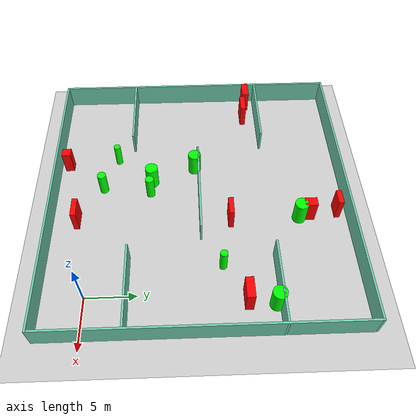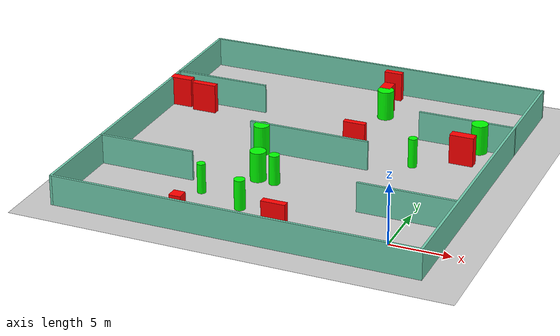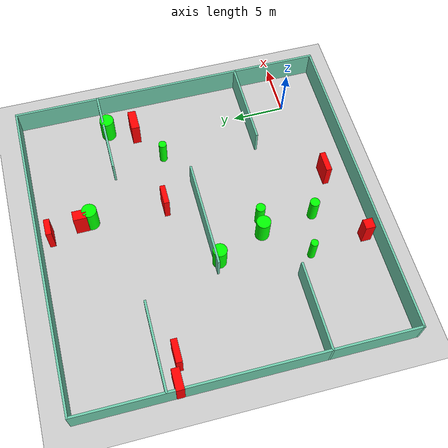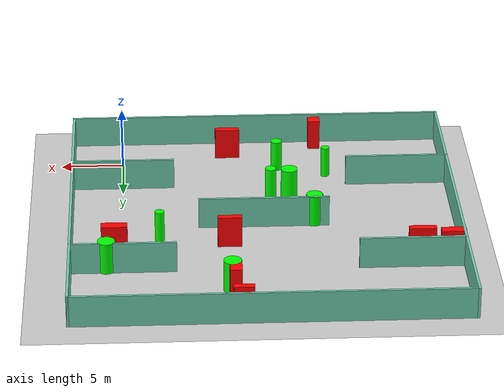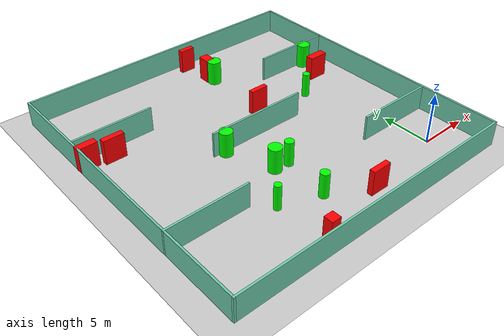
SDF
<sdf version="1.7">
 <world name="default">
  <light name="sun" type="directional">
   <pose>0 0 10 0 -0 0</pose>
   <diffuse>0.8 0.8 0.8 1</diffuse>
   <specular>0.2 0.2 0.2 1</specular>
   <attenuation>
    <range>1000</range>
    <constant>0.9</constant>
    <linear>0.01</linear>
    <quadratic>0.001</quadratic>
   </attenuation>
   <direction>-0.5 0.1 -0.9</direction>
   <spot><inner_angle>0</inner_angle><outer_angle>0</outer_angle><falloff>0</falloff></spot>
  </light>
  <model name="ground_plane">
   <static>1</static>
   <link name="link">
    <collision name="collision">
     <geometry><plane><normal>0 0 1</normal><size>100 100</size></plane></geometry>
     <surface>
      <contact><collide_bitmask>65535</collide_bitmask></contact>
      <friction><ode><mu>100</mu><mu2>50</mu2></ode></friction>
     </surface>
    </collision>
    <visual name="visual">
     <cast_shadows>0</cast_shadows>
     <geometry><plane><normal>0 0 1</normal><size>100 100</size></plane></geometry>
     <material>
      <script><uri>file://media/materials/scripts/gazebo.material</uri><name>Gazebo/Grey</name></script>
     </material>
    </visual>
   </link>
  </model>
  <gravity>0 0 -9.8</gravity>
  <magnetic_field>6e-06 2.3e-05 -4.2e-05</magnetic_field>
  <atmosphere type="adiabatic"/>
  <physics type="ode">
   <max_step_size>0.001</max_step_size>
   <real_time_factor>1</real_time_factor>
   <real_time_update_rate>1000</real_time_update_rate>
  </physics>
  <scene><ambient>0.4 0.4 0.4 1</ambient><background>0.7 0.7 0.7 1</background><shadows>1</shadows></scene>
  <spherical_coordinates>
   <surface_model>EARTH_WGS84</surface_model>
   <latitude_deg>0</latitude_deg>
   <longitude_deg>0</longitude_deg>
   <elevation>0</elevation>
   <heading_deg>0</heading_deg>
  </spherical_coordinates>
  <model name="my_base_walls">
   <link name="Wall_10">
    <collision name="Wall_10_Collision">
     <geometry><box><size>8.2 0.2 2.5</size></box></geometry>
     <pose>0 0 1.25 0 -0 0</pose>
    </collision>
    <visual name="Wall_10_Visual">
     <pose>0 0 1.25 0 -0 0</pose>
     <geometry><box><size>8.2 0.2 2.5</size></box></geometry>
     <material>
      <script><uri>file://media/materials/scripts/gazebo.material</uri><name>Gazebo/Grey</name></script>
      <ambient>0.435294 0.796078 0.67451 1</ambient>
     </material>
     <meta><layer>0</layer></meta>
    </visual>
    <pose>-11 -7 0 0 -0 0</pose>
   </link>
   <link name="Wall_12">
    <collision name="Wall_12_Collision">
     <geometry><box><size>8.2 0.2 2.5</size></box></geometry>
     <pose>0 0 1.25 0 -0 0</pose>
    </collision>
    <visual name="Wall_12_Visual">
     <pose>0 0 1.25 0 -0 0</pose>
     <geometry><box><size>8.2 0.2 2.5</size></box></geometry>
     <material>
      <script><uri>file://media/materials/scripts/gazebo.material</uri><name>Gazebo/Grey</name></script>
      <ambient>0.435294 0.796078 0.67451 1</ambient>
     </material>
     <meta><layer>0</layer></meta>
    </visual>
    <pose>-11 7 0 0 -0 0</pose>
   </link>
   <link name="Wall_14">
    <collision name="Wall_14_Collision">
     <geometry><box><size>8.2 0.2 2.5</size></box></geometry>
     <pose>0 0 1.25 0 -0 0</pose>
    </collision>
    <visual name="Wall_14_Visual">
     <pose>0 0 1.25 0 -0 0</pose>
     <geometry><box><size>8.2 0.2 2.5</size></box></geometry>
     <material>
      <script><uri>file://media/materials/scripts/gazebo.material</uri><name>Gazebo/Grey</name></script>
      <ambient>0.435294 0.796078 0.67451 1</ambient>
     </material>
     <meta><layer>0</layer></meta>
    </visual>
    <pose>11 7 0 0 -0 3.14159</pose>
   </link>
   <link name="Wall_16">
    <collision name="Wall_16_Collision">
     <geometry><box><size>10.2 0.2 2.5</size></box></geometry>
     <pose>0 0 1.25 0 -0 0</pose>
    </collision>
    <visual name="Wall_16_Visual">
     <pose>0 0 1.25 0 -0 0</pose>
     <geometry><box><size>10.2 0.2 2.5</size></box></geometry>
     <material>
      <script><uri>file://media/materials/scripts/gazebo.material</uri><name>Gazebo/Grey</name></script>
      <ambient>0.435294 0.796078 0.67451 1</ambient>
     </material>
     <meta><layer>0</layer></meta>
    </visual>
    <pose>0 0 0 0 -0 3.14159</pose>
   </link>
   <link name="Wall_2">
    <collision name="Wall_2_Collision">
     <geometry><box><size>30.2 0.2 2.5</size></box></geometry>
     <pose>0 0 1.25 0 -0 0</pose>
    </collision>
    <visual name="Wall_2_Visual">
     <pose>0 0 1.25 0 -0 0</pose>
     <geometry><box><size>30.2 0.2 2.5</size></box></geometry>
     <material>
      <script><uri>file://media/materials/scripts/gazebo.material</uri><name>Gazebo/Grey</name></script>
      <ambient>0.435294 0.796078 0.67451 1</ambient>
     </material>
     <meta><layer>0</layer></meta>
    </visual>
    <pose>0 -15 0 0 -0 3.14159</pose>
   </link>
   <link name="Wall_3">
    <collision name="Wall_3_Collision">
     <geometry><box><size>30.2 0.2 2.5</size></box></geometry>
     <pose>0 0 1.25 0 -0 0</pose>
    </collision>
    <visual name="Wall_3_Visual">
     <pose>0 0 1.25 0 -0 0</pose>
     <geometry><box><size>30.2 0.2 2.5</size></box></geometry>
     <material>
      <script><uri>file://media/materials/scripts/gazebo.material</uri><name>Gazebo/Grey</name></script>
      <ambient>0.435294 0.796078 0.67451 1</ambient>
     </material>
     <meta><layer>0</layer></meta>
    </visual>
    <pose>-15 0 0 0 -0 1.5708</pose>
   </link>
   <link name="Wall_4">
    <collision name="Wall_4_Collision">
     <geometry><box><size>30.2 0.2 2.5</size></box></geometry>
     <pose>0 0 1.25 0 -0 0</pose>
    </collision>
    <visual name="Wall_4_Visual">
     <pose>0 0 1.25 0 -0 0</pose>
     <geometry><box><size>30.2 0.2 2.5</size></box></geometry>
     <material>
      <script><uri>file://media/materials/scripts/gazebo.material</uri><name>Gazebo/Grey</name></script>
      <ambient>0.435294 0.796078 0.67451 1</ambient>
     </material>
     <meta><layer>0</layer></meta>
    </visual>
    <pose>0 15 0 0 -0 0</pose>
   </link>
   <link name="Wall_6">
    <collision name="Wall_6_Collision">
     <geometry><box><size>30.2 0.2 2.5</size></box></geometry>
     <pose>0 0 1.25 0 -0 0</pose>
    </collision>
    <visual name="Wall_6_Visual">
     <pose>0 0 1.25 0 -0 0</pose>
     <geometry><box><size>30.2 0.2 2.5</size></box></geometry>
     <material>
      <script><uri>file://media/materials/scripts/gazebo.material</uri><name>Gazebo/Grey</name></script>
      <ambient>0.435294 0.796078 0.67451 1</ambient>
     </material>
     <meta><layer>0</layer></meta>
    </visual>
    <pose>15 0 0 0 -0 1.5708</pose>
   </link>
   <link name="Wall_8">
    <collision name="Wall_8_Collision">
     <geometry><box><size>8.2 0.2 2.5</size></box></geometry>
     <pose>0 0 1.25 0 -0 0</pose>
    </collision>
    <visual name="Wall_8_Visual">
     <pose>0 0 1.25 0 -0 0</pose>
     <geometry><box><size>8.2 0.2 2.5</size></box></geometry>
     <material>
      <script><uri>file://media/materials/scripts/gazebo.material</uri><name>Gazebo/Grey</name></script>
      <ambient>0.435294 0.796078 0.67451 1</ambient>
     </material>
     <meta><layer>0</layer></meta>
    </visual>
    <pose>11 -7 0 0 -0 3.14159</pose>
   </link>
   <static>1</static>
   <pose>-11 11 0 0 -0 0</pose>
  </model>
  <model name="cylinder1">
   <static>1</static>
   <link name="link">
    <inertial>
     <mass>1</mass>
     <inertia><ixx>0.5</ixx><ixy>0</ixy><ixz>0</ixz><iyy>0.5</iyy><iyz>0</iyz><izz>1</izz></inertia>
    </inertial>
    <collision name="collision">
     <geometry><cylinder><radius>0.43779811018689213</radius><length>2.5</length></cylinder></geometry>
    </collision>
    <visual name="visual">
     <geometry><cylinder><radius>0.43779811018689213</radius><length>2.5</length></cylinder></geometry>
     <material>
      <ambient>0 1 0 1</ambient>
      <diffuse>0 1 0 1</diffuse>
      <specular>0.1 0.1 0.1 1</specular>
      <emissive>0 0 0 0</emissive>
     </material>
    </visual>
   </link>
   <pose>-11.775563400369789 5.915959656271598 1.25 0 0 0</pose>
  </model>
  <model name="cylinder2">
   <static>1</static>
   <link name="link">
    <inertial>
     <mass>1</mass>
     <inertia><ixx>0.5</ixx><ixy>0</ixy><ixz>0</ixz><iyy>0.5</iyy><iyz>0</iyz><izz>1</izz></inertia>
    </inertial>
    <collision name="collision">
     <geometry><cylinder><radius>0.6479462263509712</radius><length>2.5</length></cylinder></geometry>
    </collision>
    <visual name="visual">
     <geometry><cylinder><radius>0.6479462263509712</radius><length>2.5</length></cylinder></geometry>
     <material>
      <ambient>0 1 0 1</ambient>
      <diffuse>0 1 0 1</diffuse>
      <specular>0.1 0.1 0.1 1</specular>
      <emissive>0 0 0 0</emissive>
     </material>
    </visual>
   </link>
   <pose>-14.972896978156204 10.601004407842435 1.25 0 0 0</pose>
  </model>
  <model name="cylinder3">
   <static>1</static>
   <link name="link">
    <inertial>
     <mass>1</mass>
     <inertia><ixx>0.5</ixx><ixy>0</ixy><ixz>0</ixz><iyy>0.5</iyy><iyz>0</iyz><izz>1</izz></inertia>
    </inertial>
    <collision name="collision">
     <geometry><cylinder><radius>0.4450197319135297</radius><length>2.5</length></cylinder></geometry>
    </collision>
    <visual name="visual">
     <geometry><cylinder><radius>0.4450197319135297</radius><length>2.5</length></cylinder></geometry>
     <material>
      <ambient>0 1 0 1</ambient>
      <diffuse>0 1 0 1</diffuse>
      <specular>0.1 0.1 0.1 1</specular>
      <emissive>0 0 0 0</emissive>
     </material>
    </visual>
   </link>
   <pose>-12.475430845683814 0.9819570571474259 1.25 0 0 0</pose>
  </model>
  <model name="cylinder4">
   <static>1</static>
   <link name="link">
    <inertial>
     <mass>1</mass>
     <inertia><ixx>0.5</ixx><ixy>0</ixy><ixz>0</ixz><iyy>0.5</iyy><iyz>0</iyz><izz>1</izz></inertia>
    </inertial>
    <collision name="collision">
     <geometry><cylinder><radius>0.6543496442783118</radius><length>2.5</length></cylinder></geometry>
    </collision>
    <visual name="visual">
     <geometry><cylinder><radius>0.6543496442783118</radius><length>2.5</length></cylinder></geometry>
     <material>
      <ambient>0 1 0 1</ambient>
      <diffuse>0 1 0 1</diffuse>
      <specular>0.1 0.1 0.1 1</specular>
      <emissive>0 0 0 0</emissive>
     </material>
    </visual>
   </link>
   <pose>-13.24653706892457 6.075958300277707 1.25 0 0 0</pose>
  </model>
  <model name="cylinder5">
   <static>1</static>
   <link name="link">
    <inertial>
     <mass>1</mass>
     <inertia><ixx>0.5</ixx><ixy>0</ixy><ixz>0</ixz><iyy>0.5</iyy><iyz>0</iyz><izz>1</izz></inertia>
    </inertial>
    <collision name="collision">
     <geometry><cylinder><radius>0.6867412344533218</radius><length>2.5</length></cylinder></geometry>
    </collision>
    <visual name="visual">
     <geometry><cylinder><radius>0.6867412344533218</radius><length>2.5</length></cylinder></geometry>
     <material>
      <ambient>0 1 0 1</ambient>
      <diffuse>0 1 0 1</diffuse>
      <specular>0.1 0.1 0.1 1</specular>
      <emissive>0 0 0 0</emissive>
     </material>
    </visual>
   </link>
   <pose>-8.189204885855945 21.034346102692567 1.25 0 0 0</pose>
  </model>
  <model name="cylinder6">
   <static>1</static>
   <link name="link">
    <inertial>
     <mass>1</mass>
     <inertia><ixx>0.5</ixx><ixy>0</ixy><ixz>0</ixz><iyy>0.5</iyy><iyz>0</iyz><izz>1</izz></inertia>
    </inertial>
    <collision name="collision">
     <geometry><cylinder><radius>0.36729928142852536</radius><length>2.5</length></cylinder></geometry>
    </collision>
    <visual name="visual">
     <geometry><cylinder><radius>0.36729928142852536</radius><length>2.5</length></cylinder></geometry>
     <material>
      <ambient>0 1 0 1</ambient>
      <diffuse>0 1 0 1</diffuse>
      <specular>0.1 0.1 0.1 1</specular>
      <emissive>0 0 0 0</emissive>
     </material>
    </visual>
   </link>
   <pose>-2.845842656954911 12.989168933629404 1.25 0 0 0</pose>
  </model>
  <model name="cylinder7">
   <static>1</static>
   <link name="link">
    <inertial>
     <mass>1</mass>
     <inertia><ixx>0.5</ixx><ixy>0</ixy><ixz>0</ixz><iyy>0.5</iyy><iyz>0</iyz><izz>1</izz></inertia>
    </inertial>
    <collision name="collision">
     <geometry><cylinder><radius>0.6787154124150772</radius><length>2.5</length></cylinder></geometry>
    </collision>
    <visual name="visual">
     <geometry><cylinder><radius>0.6787154124150772</radius><length>2.5</length></cylinder></geometry>
     <material>
      <ambient>0 1 0 1</ambient>
      <diffuse>0 1 0 1</diffuse>
      <specular>0.1 0.1 0.1 1</specular>
      <emissive>0 0 0 0</emissive>
     </material>
    </visual>
   </link>
   <pose>1.223779977340321 17.618593679139323 1.25 0 0 0</pose>
  </model>
  <model name="cylinder8">
   <static>1</static>
   <link name="link">
    <inertial>
     <mass>1</mass>
     <inertia><ixx>0.5</ixx><ixy>0</ixy><ixz>0</ixz><iyy>0.5</iyy><iyz>0</iyz><izz>1</izz></inertia>
    </inertial>
    <collision name="collision">
     <geometry><cylinder><radius>0.34345881066156014</radius><length>2.5</length></cylinder></geometry>
    </collision>
    <visual name="visual">
     <geometry><cylinder><radius>0.34345881066156014</radius><length>2.5</length></cylinder></geometry>
     <material>
      <ambient>0 1 0 1</ambient>
      <diffuse>0 1 0 1</diffuse>
      <specular>0.1 0.1 0.1 1</specular>
      <emissive>0 0 0 0</emissive>
     </material>
    </visual>
   </link>
   <pose>-16.37529202168978 2.338867991709475 1.25 0 0 0</pose>
  </model>
  <model name="box1">
   <static>1</static>
   <link name="link">
    <inertial>
     <mass>1</mass>
     <inertia><ixx>0.083</ixx><ixy>0</ixy><ixz>0</ixz><iyy>0.083</iyy><iyz>0</iyz><izz>0.083</izz></inertia>
    </inertial>
    <collision name="collision">
     <geometry><box><size>1.5563893603622216 0.5342305331768789 2.5</size></box></geometry>
    </collision>
    <visual name="visual">
     <geometry><box><size>1.5563893603622216 0.5342305331768789 2.5</size></box></geometry>
     <material>
      <ambient>1 0 0 1</ambient>
      <diffuse>1 0 0 1</diffuse>
      <specular>0.1 0.1 0.1 1</specular>
      <emissive>0 0 0 0</emissive>
     </material>
    </visual>
    <sensor name="my_contact" type="contact">
     <contact><collision>box_collision</collision><topic>__default_topic__</topic></contact>
    </sensor>
   </link>
   <pose>-8.89787358263054 24.923499365372823 1.25 0 0 0</pose>
  </model>
  <model name="box2">
   <static>1</static>
   <link name="link">
    <inertial>
     <mass>1</mass>
     <inertia><ixx>0.083</ixx><ixy>0</ixy><ixz>0</ixz><iyy>0.083</iyy><iyz>0</iyz><izz>0.083</izz></inertia>
    </inertial>
    <collision name="collision">
     <geometry><box><size>1.8981101398943898 0.7291971892343961 2.5</size></box></geometry>
    </collision>
    <visual name="visual">
     <geometry><box><size>1.8981101398943898 0.7291971892343961 2.5</size></box></geometry>
     <material>
      <ambient>1 0 0 1</ambient>
      <diffuse>1 0 0 1</diffuse>
      <specular>0.1 0.1 0.1 1</specular>
      <emissive>0 0 0 0</emissive>
     </material>
    </visual>
    <sensor name="my_contact" type="contact">
     <contact><collision>box_collision</collision><topic>__default_topic__</topic></contact>
    </sensor>
   </link>
   <pose>-25.17138354694835 16.876377127652567 1.25 0 0 0</pose>
  </model>
  <model name="box3">
   <static>1</static>
   <link name="link">
    <inertial>
     <mass>1</mass>
     <inertia><ixx>0.083</ixx><ixy>0</ixy><ixz>0</ixz><iyy>0.083</iyy><iyz>0</iyz><izz>0.083</izz></inertia>
    </inertial>
    <collision name="collision">
     <geometry><box><size>2.0847581092391754 0.5603341426637716 2.5</size></box></geometry>
    </collision>
    <visual name="visual">
     <geometry><box><size>2.0847581092391754 0.5603341426637716 2.5</size></box></geometry>
     <material>
      <ambient>1 0 0 1</ambient>
      <diffuse>1 0 0 1</diffuse>
      <specular>0.1 0.1 0.1 1</specular>
      <emissive>0 0 0 0</emissive>
     </material>
    </visual>
    <sensor name="my_contact" type="contact">
     <contact><collision>box_collision</collision><topic>__default_topic__</topic></contact>
    </sensor>
   </link>
   <pose>-22.849629300590482 16.42597512755337 1.25 0 0 0</pose>
  </model>
  <model name="box4">
   <static>1</static>
   <link name="link">
    <inertial>
     <mass>1</mass>
     <inertia><ixx>0.083</ixx><ixy>0</ixy><ixz>0</ixz><iyy>0.083</iyy><iyz>0</iyz><izz>0.083</izz></inertia>
    </inertial>
    <collision name="collision">
     <geometry><box><size>0.9537464757836704 0.9096358102877531 2.5</size></box></geometry>
    </collision>
    <visual name="visual">
     <geometry><box><size>0.9537464757836704 0.9096358102877531 2.5</size></box></geometry>
     <material>
      <ambient>1 0 0 1</ambient>
      <diffuse>1 0 0 1</diffuse>
      <specular>0.1 0.1 0.1 1</specular>
      <emissive>0 0 0 0</emissive>
     </material>
    </visual>
    <sensor name="my_contact" type="contact">
     <contact><collision>box_collision</collision><topic>__default_topic__</topic></contact>
    </sensor>
   </link>
   <pose>-15.774375234870169 -2.9845459816344135 1.25 0 0 0</pose>
  </model>
  <model name="box5">
   <static>1</static>
   <link name="link">
    <inertial>
     <mass>1</mass>
     <inertia><ixx>0.083</ixx><ixy>0</ixy><ixz>0</ixz><iyy>0.083</iyy><iyz>0</iyz><izz>0.083</izz></inertia>
    </inertial>
    <collision name="collision">
     <geometry><box><size>0.9303306313121915 1.240463373463348 2.5</size></box></geometry>
    </collision>
    <visual name="visual">
     <geometry><box><size>0.9303306313121915 1.240463373463348 2.5</size></box></geometry>
     <material>
      <ambient>1 0 0 1</ambient>
      <diffuse>1 0 0 1</diffuse>
      <specular>0.1 0.1 0.1 1</specular>
      <emissive>0 0 0 0</emissive>
     </material>
    </visual>
    <sensor name="my_contact" type="contact">
     <contact><collision>box_collision</collision><topic>__default_topic__</topic></contact>
    </sensor>
   </link>
   <pose>-8.410035011642838 21.97055908908945 1.25 0 0 0</pose>
  </model>
  <model name="box6">
   <static>1</static>
   <link name="link">
    <inertial>
     <mass>1</mass>
     <inertia><ixx>0.083</ixx><ixy>0</ixy><ixz>0</ixz><iyy>0.083</iyy><iyz>0</iyz><izz>0.083</izz></inertia>
    </inertial>
    <collision name="collision">
     <geometry><box><size>1.8750906961835643 0.5031154821872642 2.5</size></box></geometry>
    </collision>
    <visual name="visual">
     <geometry><box><size>1.8750906961835643 0.5031154821872642 2.5</size></box></geometry>
     <material>
      <ambient>1 0 0 1</ambient>
      <diffuse>1 0 0 1</diffuse>
      <specular>0.1 0.1 0.1 1</specular>
      <emissive>0 0 0 0</emissive>
     </material>
    </visual>
    <sensor name="my_contact" type="contact">
     <contact><collision>box_collision</collision><topic>__default_topic__</topic></contact>
    </sensor>
   </link>
   <pose>-8.233382675869933 14.05094893755366 1.25 0 0 0</pose>
  </model>
  <model name="box7">
   <static>1</static>
   <link name="link">
    <inertial>
     <mass>1</mass>
     <inertia><ixx>0.083</ixx><ixy>0</ixy><ixz>0</ixz><iyy>0.083</iyy><iyz>0</iyz><izz>0.083</izz></inertia>
    </inertial>
    <collision name="collision">
     <geometry><box><size>2.007423083124256 0.7830155176468745 2.5</size></box></geometry>
    </collision>
    <visual name="visual">
     <geometry><box><size>2.007423083124256 0.7830155176468745 2.5</size></box></geometry>
     <material>
      <ambient>1 0 0 1</ambient>
      <diffuse>1 0 0 1</diffuse>
      <specular>0.1 0.1 0.1 1</specular>
      <emissive>0 0 0 0</emissive>
     </material>
    </visual>
    <sensor name="my_contact" type="contact">
     <contact><collision>box_collision</collision><topic>__default_topic__</topic></contact>
    </sensor>
   </link>
   <pose>0.6309379803816277 15.078158937020067 1.25 0 0 0</pose>
  </model>
  <model name="box8">
   <static>1</static>
   <link name="link">
    <inertial>
     <mass>1</mass>
     <inertia><ixx>0.083</ixx><ixy>0</ixy><ixz>0</ixz><iyy>0.083</iyy><iyz>0</iyz><izz>0.083</izz></inertia>
    </inertial>
    <collision name="collision">
     <geometry><box><size>1.9627140973645663 0.536799051682205 2.5</size></box></geometry>
    </collision>
    <visual name="visual">
     <geometry><box><size>1.9627140973645663 0.536799051682205 2.5</size></box></geometry>
     <material>
      <ambient>1 0 0 1</ambient>
      <diffuse>1 0 0 1</diffuse>
      <specular>0.1 0.1 0.1 1</specular>
      <emissive>0 0 0 0</emissive>
     </material>
    </visual>
    <sensor name="my_contact" type="contact">
     <contact><collision>box_collision</collision><topic>__default_topic__</topic></contact>
    </sensor>
   </link>
   <pose>-8.551676392751885 -1.4091315218602434 1.25 0 0 0</pose>
  </model>
 </world>
</sdf>
